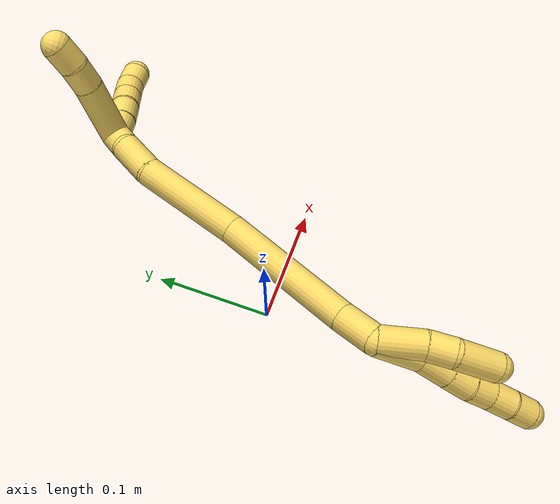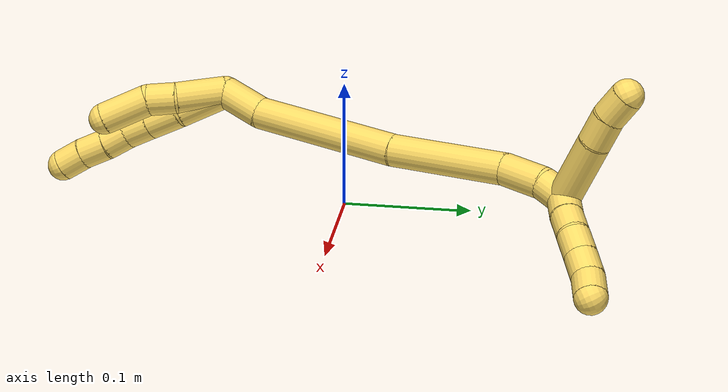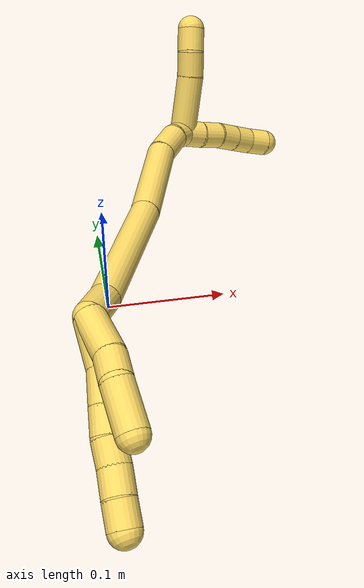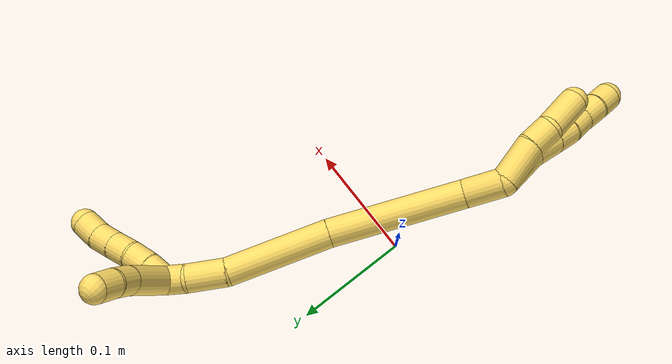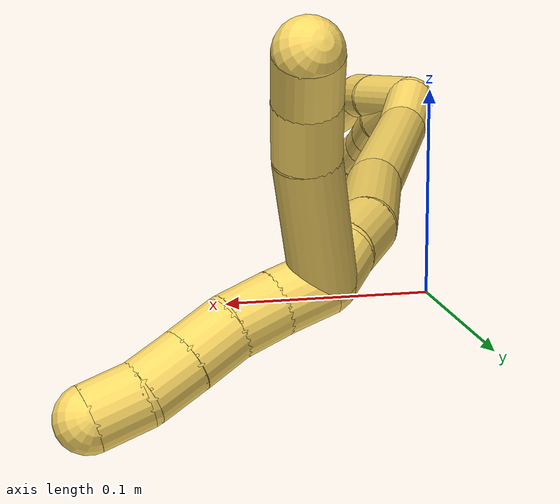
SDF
<sdf version="1.7">
 <world name="default">
  <model name="5">
   <static>0</static>
   <link name="5">
    <collision name="collision-cylinder-e_1_2_8">
     <pose>-0.000658 -0.001163 -0.020147 3.08392 -0.032595 -1.02871</pose>
     <geometry><cylinder><radius>0.0125</radius><length>0.040383</length></cylinder></geometry>
     <surface>
      <friction><ode><mu>1.16</mu><mu2>1.16</mu2><slip1>0</slip1><slip2>0</slip2></ode></friction>
      <contact><ode><kp>1e+06</kp><kd>1</kd><max_vel>0</max_vel><min_depth>0.001</min_depth></ode></contact>
     </surface>
    </collision>
    <visual name="visual-cylinder-e_1_2_8">
     <pose>-0.000658 -0.001163 -0.020147 3.08392 -0.032595 -1.02871</pose>
     <geometry><cylinder><radius>0.0125</radius><length>0.040383</length></cylinder></geometry>
     <material><ambient>1 0.858824 0.4 1</ambient></material>
    </visual>
    <collision name="collision-cylinder-e_2_8_9">
     <pose>-0.003861 -0.00479 -0.053323 2.95468 -0.189629 -1.58529</pose>
     <geometry><cylinder><radius>0.0125</radius><length>0.027003</length></cylinder></geometry>
     <surface>
      <friction><ode><mu>1.16</mu><mu2>1.16</mu2><slip1>0</slip1><slip2>0</slip2></ode></friction>
      <contact><ode><kp>1e+06</kp><kd>1</kd><max_vel>0</max_vel><min_depth>0.001</min_depth></ode></contact>
     </surface>
    </collision>
    <visual name="visual-cylinder-e_2_8_9">
     <pose>-0.003861 -0.00479 -0.053323 2.95468 -0.189629 -1.58529</pose>
     <geometry><cylinder><radius>0.0125</radius><length>0.027003</length></cylinder></geometry>
     <material><ambient>1 0.858824 0.4 1</ambient></material>
    </visual>
    <collision name="collision-cylinder-e_3_9_10">
     <pose>-0.008397 -0.009089 -0.07671 2.96629 -0.187008 -1.63576</pose>
     <geometry><cylinder><radius>0.0125</radius><length>0.021413</length></cylinder></geometry>
     <surface>
      <friction><ode><mu>1.16</mu><mu2>1.16</mu2><slip1>0</slip1><slip2>0</slip2></ode></friction>
      <contact><ode><kp>1e+06</kp><kd>1</kd><max_vel>0</max_vel><min_depth>0.001</min_depth></ode></contact>
     </surface>
    </collision>
    <visual name="visual-cylinder-e_3_9_10">
     <pose>-0.008397 -0.009089 -0.07671 2.96629 -0.187008 -1.63576</pose>
     <geometry><cylinder><radius>0.0125</radius><length>0.021413</length></cylinder></geometry>
     <material><ambient>1 0.858824 0.4 1</ambient></material>
    </visual>
    <collision name="collision-cylinder-e_4_10_11">
     <pose>-0.011669 -0.011162 -0.097008 3.1176 -0.128248 -2.77214</pose>
     <geometry><cylinder><radius>0.0125</radius><length>0.020048</length></cylinder></geometry>
     <surface>
      <friction><ode><mu>1.16</mu><mu2>1.16</mu2><slip1>0</slip1><slip2>0</slip2></ode></friction>
      <contact><ode><kp>1e+06</kp><kd>1</kd><max_vel>0</max_vel><min_depth>0.001</min_depth></ode></contact>
     </surface>
    </collision>
    <visual name="visual-cylinder-e_4_10_11">
     <pose>-0.011669 -0.011162 -0.097008 3.1176 -0.128248 -2.77214</pose>
     <geometry><cylinder><radius>0.0125</radius><length>0.020048</length></cylinder></geometry>
     <material><ambient>1 0.858824 0.4 1</ambient></material>
    </visual>
    <collision name="collision-cylinder-e_5_11_12">
     <pose>-0.01414 -0.012809 -0.117283 3.00621 -0.113441 -1.39441</pose>
     <geometry><cylinder><radius>0.0125</radius><length>0.020998</length></cylinder></geometry>
     <surface>
      <friction><ode><mu>1.16</mu><mu2>1.16</mu2><slip1>0</slip1><slip2>0</slip2></ode></friction>
      <contact><ode><kp>1e+06</kp><kd>1</kd><max_vel>0</max_vel><min_depth>0.001</min_depth></ode></contact>
     </surface>
    </collision>
    <visual name="visual-cylinder-e_5_11_12">
     <pose>-0.01414 -0.012809 -0.117283 3.00621 -0.113441 -1.39441</pose>
     <geometry><cylinder><radius>0.0125</radius><length>0.020998</length></cylinder></geometry>
     <material><ambient>1 0.858824 0.4 1</ambient></material>
    </visual>
    <collision name="collision-cylinder-e_6_12_6">
     <pose>-0.017087 -0.01455 -0.137536 3.10798 -0.175466 -2.76399</pose>
     <geometry><cylinder><radius>0.0125</radius><length>0.020154</length></cylinder></geometry>
     <surface>
      <friction><ode><mu>1.16</mu><mu2>1.16</mu2><slip1>0</slip1><slip2>0</slip2></ode></friction>
      <contact><ode><kp>1e+06</kp><kd>1</kd><max_vel>0</max_vel><min_depth>0.001</min_depth></ode></contact>
     </surface>
    </collision>
    <visual name="visual-cylinder-e_6_12_6">
     <pose>-0.017087 -0.01455 -0.137536 3.10798 -0.175466 -2.76399</pose>
     <geometry><cylinder><radius>0.0125</radius><length>0.020154</length></cylinder></geometry>
     <material><ambient>1 0.858824 0.4 1</ambient></material>
    </visual>
    <collision name="collision-cylinder-e_1_2_13">
     <pose>0.00593 -0.003266 -0.018332 2.96529 0.308317 2.10731</pose>
     <geometry><cylinder><radius>0.0125</radius><length>0.039084</length></cylinder></geometry>
     <surface>
      <friction><ode><mu>1.16</mu><mu2>1.16</mu2><slip1>0</slip1><slip2>0</slip2></ode></friction>
      <contact><ode><kp>1e+06</kp><kd>1</kd><max_vel>0</max_vel><min_depth>0.001</min_depth></ode></contact>
     </surface>
    </collision>
    <visual name="visual-cylinder-e_1_2_13">
     <pose>0.00593 -0.003266 -0.018332 2.96529 0.308317 2.10731</pose>
     <geometry><cylinder><radius>0.0125</radius><length>0.039084</length></cylinder></geometry>
     <material><ambient>1 0.858824 0.4 1</ambient></material>
    </visual>
    <collision name="collision-cylinder-e_2_13_14">
     <pose>0.013872 -0.010118 -0.047273 2.81559 0.177727 0.992993</pose>
     <geometry><cylinder><radius>0.0125</radius><length>0.022756</length></cylinder></geometry>
     <surface>
      <friction><ode><mu>1.16</mu><mu2>1.16</mu2><slip1>0</slip1><slip2>0</slip2></ode></friction>
      <contact><ode><kp>1e+06</kp><kd>1</kd><max_vel>0</max_vel><min_depth>0.001</min_depth></ode></contact>
     </surface>
    </collision>
    <visual name="visual-cylinder-e_2_13_14">
     <pose>0.013872 -0.010118 -0.047273 2.81559 0.177727 0.992993</pose>
     <geometry><cylinder><radius>0.0125</radius><length>0.022756</length></cylinder></geometry>
     <material><ambient>1 0.858824 0.4 1</ambient></material>
    </visual>
    <collision name="collision-cylinder-e_3_14_5">
     <pose>0.01567 -0.014622 -0.076939 3.09351 -0.011211 -0.458012</pose>
     <geometry><cylinder><radius>0.0125</radius><length>0.038159</length></cylinder></geometry>
     <surface>
      <friction><ode><mu>1.16</mu><mu2>1.16</mu2><slip1>0</slip1><slip2>0</slip2></ode></friction>
      <contact><ode><kp>1e+06</kp><kd>1</kd><max_vel>0</max_vel><min_depth>0.001</min_depth></ode></contact>
     </surface>
    </collision>
    <visual name="visual-cylinder-e_3_14_5">
     <pose>0.01567 -0.014622 -0.076939 3.09351 -0.011211 -0.458012</pose>
     <geometry><cylinder><radius>0.0125</radius><length>0.038159</length></cylinder></geometry>
     <material><ambient>1 0.858824 0.4 1</ambient></material>
    </visual>
    <collision name="collision-cylinder-e_1_2_15">
     <pose>-0.002358 0.014331 0.009752 -0.973297 -0.135173 0.071597</pose>
     <geometry><cylinder><radius>0.0125</radius><length>0.034988</length></cylinder></geometry>
     <surface>
      <friction><ode><mu>1.16</mu><mu2>1.16</mu2><slip1>0</slip1><slip2>0</slip2></ode></friction>
      <contact><ode><kp>1e+06</kp><kd>1</kd><max_vel>0</max_vel><min_depth>0.001</min_depth></ode></contact>
     </surface>
    </collision>
    <visual name="visual-cylinder-e_1_2_15">
     <pose>-0.002358 0.014331 0.009752 -0.973297 -0.135173 0.071597</pose>
     <geometry><cylinder><radius>0.0125</radius><length>0.034988</length></cylinder></geometry>
     <material><ambient>1 0.858824 0.4 1</ambient></material>
    </visual>
    <collision name="collision-cylinder-e_2_15_16">
     <pose>-0.002735 0.070214 0.062123 -0.772725 0.033258 -0.013531</pose>
     <geometry><cylinder><radius>0.0125</radius><length>0.119111</length></cylinder></geometry>
     <surface>
      <friction><ode><mu>1.16</mu><mu2>1.16</mu2><slip1>0</slip1><slip2>0</slip2></ode></friction>
      <contact><ode><kp>1e+06</kp><kd>1</kd><max_vel>0</max_vel><min_depth>0.001</min_depth></ode></contact>
     </surface>
    </collision>
    <visual name="visual-cylinder-e_2_15_16">
     <pose>-0.002735 0.070214 0.062123 -0.772725 0.033258 -0.013531</pose>
     <geometry><cylinder><radius>0.0125</radius><length>0.119111</length></cylinder></geometry>
     <material><ambient>1 0.858824 0.4 1</ambient></material>
    </visual>
    <collision name="collision-cylinder-e_3_16_17">
     <pose>0.000175 0.139811 0.140728 -0.662004 0.020359 -0.006996</pose>
     <geometry><cylinder><radius>0.0125</radius><length>0.091266</length></cylinder></geometry>
     <surface>
      <friction><ode><mu>1.16</mu><mu2>1.16</mu2><slip1>0</slip1><slip2>0</slip2></ode></friction>
      <contact><ode><kp>1e+06</kp><kd>1</kd><max_vel>0</max_vel><min_depth>0.001</min_depth></ode></contact>
     </surface>
    </collision>
    <visual name="visual-cylinder-e_3_16_17">
     <pose>0.000175 0.139811 0.140728 -0.662004 0.020359 -0.006996</pose>
     <geometry><cylinder><radius>0.0125</radius><length>0.091266</length></cylinder></geometry>
     <material><ambient>1 0.858824 0.4 1</ambient></material>
    </visual>
    <collision name="collision-cylinder-e_4_17_18">
     <pose>0.003015 0.180979 0.187652 -0.875954 0.11144 -0.052231</pose>
     <geometry><cylinder><radius>0.0125</radius><length>0.034383</length></cylinder></geometry>
     <surface>
      <friction><ode><mu>1.16</mu><mu2>1.16</mu2><slip1>0</slip1><slip2>0</slip2></ode></friction>
      <contact><ode><kp>1e+06</kp><kd>1</kd><max_vel>0</max_vel><min_depth>0.001</min_depth></ode></contact>
     </surface>
    </collision>
    <visual name="visual-cylinder-e_4_17_18">
     <pose>0.003015 0.180979 0.187652 -0.875954 0.11144 -0.052231</pose>
     <geometry><cylinder><radius>0.0125</radius><length>0.034383</length></cylinder></geometry>
     <material><ambient>1 0.858824 0.4 1</ambient></material>
    </visual>
    <collision name="collision-cylinder-e_5_18_1">
     <pose>0.004759 0.2032 0.203036 -1.11633 -0.016631 0.010385</pose>
     <geometry><cylinder><radius>0.0125</radius><length>0.020253</length></cylinder></geometry>
     <surface>
      <friction><ode><mu>1.16</mu><mu2>1.16</mu2><slip1>0</slip1><slip2>0</slip2></ode></friction>
      <contact><ode><kp>1e+06</kp><kd>1</kd><max_vel>0</max_vel><min_depth>0.001</min_depth></ode></contact>
     </surface>
    </collision>
    <visual name="visual-cylinder-e_5_18_1">
     <pose>0.004759 0.2032 0.203036 -1.11633 -0.016631 0.010385</pose>
     <geometry><cylinder><radius>0.0125</radius><length>0.020253</length></cylinder></geometry>
     <material><ambient>1 0.858824 0.4 1</ambient></material>
    </visual>
    <collision name="collision-cylinder-e_1_1_19">
     <pose>0.024228 0.20713 0.226185 0.269552 0.791331 0.113156</pose>
     <geometry><cylinder><radius>0.0125</radius><length>0.055216</length></cylinder></geometry>
     <surface>
      <friction><ode><mu>1.16</mu><mu2>1.16</mu2><slip1>0</slip1><slip2>0</slip2></ode></friction>
      <contact><ode><kp>1e+06</kp><kd>1</kd><max_vel>0</max_vel><min_depth>0.001</min_depth></ode></contact>
     </surface>
    </collision>
    <visual name="visual-cylinder-e_1_1_19">
     <pose>0.024228 0.20713 0.226185 0.269552 0.791331 0.113156</pose>
     <geometry><cylinder><radius>0.0125</radius><length>0.055216</length></cylinder></geometry>
     <material><ambient>1 0.858824 0.4 1</ambient></material>
    </visual>
    <collision name="collision-cylinder-e_2_19_20">
     <pose>0.051266 0.198919 0.253253 0.348953 0.693731 0.127263</pose>
     <geometry><cylinder><radius>0.0125</radius><length>0.023151</length></cylinder></geometry>
     <surface>
      <friction><ode><mu>1.16</mu><mu2>1.16</mu2><slip1>0</slip1><slip2>0</slip2></ode></friction>
      <contact><ode><kp>1e+06</kp><kd>1</kd><max_vel>0</max_vel><min_depth>0.001</min_depth></ode></contact>
     </surface>
    </collision>
    <visual name="visual-cylinder-e_2_19_20">
     <pose>0.051266 0.198919 0.253253 0.348953 0.693731 0.127263</pose>
     <geometry><cylinder><radius>0.0125</radius><length>0.023151</length></cylinder></geometry>
     <material><ambient>1 0.858824 0.4 1</ambient></material>
    </visual>
    <collision name="collision-cylinder-e_3_20_4">
     <pose>0.064601 0.194531 0.27056 0.149251 0.580619 0.044664</pose>
     <geometry><cylinder><radius>0.0125</radius><length>0.021634</length></cylinder></geometry>
     <surface>
      <friction><ode><mu>1.16</mu><mu2>1.16</mu2><slip1>0</slip1><slip2>0</slip2></ode></friction>
      <contact><ode><kp>1e+06</kp><kd>1</kd><max_vel>0</max_vel><min_depth>0.001</min_depth></ode></contact>
     </surface>
    </collision>
    <visual name="visual-cylinder-e_3_20_4">
     <pose>0.064601 0.194531 0.27056 0.149251 0.580619 0.044664</pose>
     <geometry><cylinder><radius>0.0125</radius><length>0.021634</length></cylinder></geometry>
     <material><ambient>1 0.858824 0.4 1</ambient></material>
    </visual>
    <collision name="collision-cylinder-e_1_1_21">
     <pose>0.008247 0.221485 0.205992 -1.73143 0.374336 -0.437944</pose>
     <geometry><cylinder><radius>0.0125</radius><length>0.02</length></cylinder></geometry>
     <surface>
      <friction><ode><mu>1.16</mu><mu2>1.16</mu2><slip1>0</slip1><slip2>0</slip2></ode></friction>
      <contact><ode><kp>1e+06</kp><kd>1</kd><max_vel>0</max_vel><min_depth>0.001</min_depth></ode></contact>
     </surface>
    </collision>
    <visual name="visual-cylinder-e_1_1_21">
     <pose>0.008247 0.221485 0.205992 -1.73143 0.374336 -0.437944</pose>
     <geometry><cylinder><radius>0.0125</radius><length>0.02</length></cylinder></geometry>
     <material><ambient>1 0.858824 0.4 1</ambient></material>
    </visual>
    <collision name="collision-cylinder-e_2_21_22">
     <pose>0.015097 0.240136 0.203995 -1.62437 0.324995 -0.34255</pose>
     <geometry><cylinder><radius>0.0125</radius><length>0.02</length></cylinder></geometry>
     <surface>
      <friction><ode><mu>1.16</mu><mu2>1.16</mu2><slip1>0</slip1><slip2>0</slip2></ode></friction>
      <contact><ode><kp>1e+06</kp><kd>1</kd><max_vel>0</max_vel><min_depth>0.001</min_depth></ode></contact>
     </surface>
    </collision>
    <visual name="visual-cylinder-e_2_21_22">
     <pose>0.015097 0.240136 0.203995 -1.62437 0.324995 -0.34255</pose>
     <geometry><cylinder><radius>0.0125</radius><length>0.02</length></cylinder></geometry>
     <material><ambient>1 0.858824 0.4 1</ambient></material>
    </visual>
    <collision name="collision-cylinder-e_3_22_23">
     <pose>0.01986 0.259455 0.202862 -1.63422 0.157709 -0.167995</pose>
     <geometry><cylinder><radius>0.0125</radius><length>0.02</length></cylinder></geometry>
     <surface>
      <friction><ode><mu>1.16</mu><mu2>1.16</mu2><slip1>0</slip1><slip2>0</slip2></ode></friction>
      <contact><ode><kp>1e+06</kp><kd>1</kd><max_vel>0</max_vel><min_depth>0.001</min_depth></ode></contact>
     </surface>
    </collision>
    <visual name="visual-cylinder-e_3_22_23">
     <pose>0.01986 0.259455 0.202862 -1.63422 0.157709 -0.167995</pose>
     <geometry><cylinder><radius>0.0125</radius><length>0.02</length></cylinder></geometry>
     <material><ambient>1 0.858824 0.4 1</ambient></material>
    </visual>
    <collision name="collision-cylinder-e_4_23_24">
     <pose>0.023186 0.279129 0.201512 -1.64437 0.176449 -0.189855</pose>
     <geometry><cylinder><radius>0.0125</radius><length>0.02</length></cylinder></geometry>
     <surface>
      <friction><ode><mu>1.16</mu><mu2>1.16</mu2><slip1>0</slip1><slip2>0</slip2></ode></friction>
      <contact><ode><kp>1e+06</kp><kd>1</kd><max_vel>0</max_vel><min_depth>0.001</min_depth></ode></contact>
     </surface>
    </collision>
    <visual name="visual-cylinder-e_4_23_24">
     <pose>0.023186 0.279129 0.201512 -1.64437 0.176449 -0.189855</pose>
     <geometry><cylinder><radius>0.0125</radius><length>0.02</length></cylinder></geometry>
     <material><ambient>1 0.858824 0.4 1</ambient></material>
    </visual>
    <collision name="collision-cylinder-e_5_24_3">
     <pose>0.028552 0.298078 0.198892 -1.7756 0.369378 -0.451398</pose>
     <geometry><cylinder><radius>0.0125</radius><length>0.02</length></cylinder></geometry>
     <surface>
      <friction><ode><mu>1.16</mu><mu2>1.16</mu2><slip1>0</slip1><slip2>0</slip2></ode></friction>
      <contact><ode><kp>1e+06</kp><kd>1</kd><max_vel>0</max_vel><min_depth>0.001</min_depth></ode></contact>
     </surface>
    </collision>
    <visual name="visual-cylinder-e_5_24_3">
     <pose>0.028552 0.298078 0.198892 -1.7756 0.369378 -0.451398</pose>
     <geometry><cylinder><radius>0.0125</radius><length>0.02</length></cylinder></geometry>
     <material><ambient>1 0.858824 0.4 1</ambient></material>
    </visual>
    <collision name="collision-sphere-3">
     <pose>0.032162 0.307208 0.196996 0 -0 0</pose>
     <geometry><sphere><radius>0.0125</radius></sphere></geometry>
     <surface>
      <friction><ode><mu>1.16</mu><mu2>1.16</mu2><slip1>0</slip1><slip2>0</slip2></ode></friction>
      <contact><ode><kp>1e+06</kp><kd>1</kd><max_vel>0</max_vel><min_depth>0.001</min_depth></ode></contact>
     </surface>
    </collision>
    <visual name="visual-sphere-3">
     <pose>0.032162 0.307208 0.196996 0 -0 0</pose>
     <geometry><sphere><radius>0.0125</radius></sphere></geometry>
     <material><ambient>1 0.858824 0.4 1</ambient></material>
    </visual>
    <collision name="collision-sphere-24">
     <pose>0.024941 0.288947 0.200789 0 -0 0</pose>
     <geometry><sphere><radius>0.0125</radius></sphere></geometry>
     <surface>
      <friction><ode><mu>1.16</mu><mu2>1.16</mu2><slip1>0</slip1><slip2>0</slip2></ode></friction>
      <contact><ode><kp>1e+06</kp><kd>1</kd><max_vel>0</max_vel><min_depth>0.001</min_depth></ode></contact>
     </surface>
    </collision>
    <visual name="visual-sphere-24">
     <pose>0.024941 0.288947 0.200789 0 -0 0</pose>
     <geometry><sphere><radius>0.0125</radius></sphere></geometry>
     <material><ambient>1 0.858824 0.4 1</ambient></material>
    </visual>
    <collision name="collision-sphere-23">
     <pose>0.021431 0.269311 0.202236 0 -0 0</pose>
     <geometry><sphere><radius>0.0125</radius></sphere></geometry>
     <surface>
      <friction><ode><mu>1.16</mu><mu2>1.16</mu2><slip1>0</slip1><slip2>0</slip2></ode></friction>
      <contact><ode><kp>1e+06</kp><kd>1</kd><max_vel>0</max_vel><min_depth>0.001</min_depth></ode></contact>
     </surface>
    </collision>
    <visual name="visual-sphere-23">
     <pose>0.021431 0.269311 0.202236 0 -0 0</pose>
     <geometry><sphere><radius>0.0125</radius></sphere></geometry>
     <material><ambient>1 0.858824 0.4 1</ambient></material>
    </visual>
    <collision name="collision-sphere-22">
     <pose>0.01829 0.249599 0.203488 0 -0 0</pose>
     <geometry><sphere><radius>0.0125</radius></sphere></geometry>
     <surface>
      <friction><ode><mu>1.16</mu><mu2>1.16</mu2><slip1>0</slip1><slip2>0</slip2></ode></friction>
      <contact><ode><kp>1e+06</kp><kd>1</kd><max_vel>0</max_vel><min_depth>0.001</min_depth></ode></contact>
     </surface>
    </collision>
    <visual name="visual-sphere-22">
     <pose>0.01829 0.249599 0.203488 0 -0 0</pose>
     <geometry><sphere><radius>0.0125</radius></sphere></geometry>
     <material><ambient>1 0.858824 0.4 1</ambient></material>
    </visual>
    <collision name="collision-sphere-21">
     <pose>0.011903 0.230673 0.204503 0 -0 0</pose>
     <geometry><sphere><radius>0.0125</radius></sphere></geometry>
     <surface>
      <friction><ode><mu>1.16</mu><mu2>1.16</mu2><slip1>0</slip1><slip2>0</slip2></ode></friction>
      <contact><ode><kp>1e+06</kp><kd>1</kd><max_vel>0</max_vel><min_depth>0.001</min_depth></ode></contact>
     </surface>
    </collision>
    <visual name="visual-sphere-21">
     <pose>0.011903 0.230673 0.204503 0 -0 0</pose>
     <geometry><sphere><radius>0.0125</radius></sphere></geometry>
     <material><ambient>1 0.858824 0.4 1</ambient></material>
    </visual>
    <collision name="collision-sphere-4">
     <pose>0.070534 0.193186 0.279504 0 -0 0</pose>
     <geometry><sphere><radius>0.0125</radius></sphere></geometry>
     <surface>
      <friction><ode><mu>1.16</mu><mu2>1.16</mu2><slip1>0</slip1><slip2>0</slip2></ode></friction>
      <contact><ode><kp>1e+06</kp><kd>1</kd><max_vel>0</max_vel><min_depth>0.001</min_depth></ode></contact>
     </surface>
    </collision>
    <visual name="visual-sphere-4">
     <pose>0.070534 0.193186 0.279504 0 -0 0</pose>
     <geometry><sphere><radius>0.0125</radius></sphere></geometry>
     <material><ambient>1 0.858824 0.4 1</ambient></material>
    </visual>
    <collision name="collision-sphere-20">
     <pose>0.058667 0.195876 0.261617 0 -0 0</pose>
     <geometry><sphere><radius>0.0125</radius></sphere></geometry>
     <surface>
      <friction><ode><mu>1.16</mu><mu2>1.16</mu2><slip1>0</slip1><slip2>0</slip2></ode></friction>
      <contact><ode><kp>1e+06</kp><kd>1</kd><max_vel>0</max_vel><min_depth>0.001</min_depth></ode></contact>
     </surface>
    </collision>
    <visual name="visual-sphere-20">
     <pose>0.058667 0.195876 0.261617 0 -0 0</pose>
     <geometry><sphere><radius>0.0125</radius></sphere></geometry>
     <material><ambient>1 0.858824 0.4 1</ambient></material>
    </visual>
    <collision name="collision-sphere-12">
     <pose>-0.015328 -0.014217 -0.127619 0 -0 0</pose>
     <geometry><sphere><radius>0.0125</radius></sphere></geometry>
     <surface>
      <friction><ode><mu>1.16</mu><mu2>1.16</mu2><slip1>0</slip1><slip2>0</slip2></ode></friction>
      <contact><ode><kp>1e+06</kp><kd>1</kd><max_vel>0</max_vel><min_depth>0.001</min_depth></ode></contact>
     </surface>
    </collision>
    <visual name="visual-sphere-12">
     <pose>-0.015328 -0.014217 -0.127619 0 -0 0</pose>
     <geometry><sphere><radius>0.0125</radius></sphere></geometry>
     <material><ambient>1 0.858824 0.4 1</ambient></material>
    </visual>
    <collision name="collision-sphere-11">
     <pose>-0.012951 -0.011401 -0.106947 0 -0 0</pose>
     <geometry><sphere><radius>0.0125</radius></sphere></geometry>
     <surface>
      <friction><ode><mu>1.16</mu><mu2>1.16</mu2><slip1>0</slip1><slip2>0</slip2></ode></friction>
      <contact><ode><kp>1e+06</kp><kd>1</kd><max_vel>0</max_vel><min_depth>0.001</min_depth></ode></contact>
     </surface>
    </collision>
    <visual name="visual-sphere-11">
     <pose>-0.012951 -0.011401 -0.106947 0 -0 0</pose>
     <geometry><sphere><radius>0.0125</radius></sphere></geometry>
     <material><ambient>1 0.858824 0.4 1</ambient></material>
    </visual>
    <collision name="collision-sphere-10">
     <pose>-0.010387 -0.010924 -0.087069 0 -0 0</pose>
     <geometry><sphere><radius>0.0125</radius></sphere></geometry>
     <surface>
      <friction><ode><mu>1.16</mu><mu2>1.16</mu2><slip1>0</slip1><slip2>0</slip2></ode></friction>
      <contact><ode><kp>1e+06</kp><kd>1</kd><max_vel>0</max_vel><min_depth>0.001</min_depth></ode></contact>
     </surface>
    </collision>
    <visual name="visual-sphere-10">
     <pose>-0.010387 -0.010924 -0.087069 0 -0 0</pose>
     <geometry><sphere><radius>0.0125</radius></sphere></geometry>
     <material><ambient>1 0.858824 0.4 1</ambient></material>
    </visual>
    <collision name="collision-sphere-9">
     <pose>-0.006406 -0.007254 -0.066352 0 -0 0</pose>
     <geometry><sphere><radius>0.0125</radius></sphere></geometry>
     <surface>
      <friction><ode><mu>1.16</mu><mu2>1.16</mu2><slip1>0</slip1><slip2>0</slip2></ode></friction>
      <contact><ode><kp>1e+06</kp><kd>1</kd><max_vel>0</max_vel><min_depth>0.001</min_depth></ode></contact>
     </surface>
    </collision>
    <visual name="visual-sphere-9">
     <pose>-0.006406 -0.007254 -0.066352 0 -0 0</pose>
     <geometry><sphere><radius>0.0125</radius></sphere></geometry>
     <material><ambient>1 0.858824 0.4 1</ambient></material>
    </visual>
    <collision name="collision-sphere-2">
     <geometry><sphere><radius>0.0125</radius></sphere></geometry>
     <surface>
      <friction><ode><mu>1.16</mu><mu2>1.16</mu2><slip1>0</slip1><slip2>0</slip2></ode></friction>
      <contact><ode><kp>1e+06</kp><kd>1</kd><max_vel>0</max_vel><min_depth>0.001</min_depth></ode></contact>
     </surface>
    </collision>
    <visual name="visual-sphere-2">
     <geometry><sphere><radius>0.0125</radius></sphere></geometry>
     <material><ambient>1 0.858824 0.4 1</ambient></material>
    </visual>
    <collision name="collision-sphere-19">
     <pose>0.043865 0.201962 0.24489 0 -0 0</pose>
     <geometry><sphere><radius>0.0125</radius></sphere></geometry>
     <surface>
      <friction><ode><mu>1.16</mu><mu2>1.16</mu2><slip1>0</slip1><slip2>0</slip2></ode></friction>
      <contact><ode><kp>1e+06</kp><kd>1</kd><max_vel>0</max_vel><min_depth>0.001</min_depth></ode></contact>
     </surface>
    </collision>
    <visual name="visual-sphere-19">
     <pose>0.043865 0.201962 0.24489 0 -0 0</pose>
     <geometry><sphere><radius>0.0125</radius></sphere></geometry>
     <material><ambient>1 0.858824 0.4 1</ambient></material>
    </visual>
    <collision name="collision-sphere-8">
     <pose>-0.001316 -0.002326 -0.040294 0 -0 0</pose>
     <geometry><sphere><radius>0.0125</radius></sphere></geometry>
     <surface>
      <friction><ode><mu>1.16</mu><mu2>1.16</mu2><slip1>0</slip1><slip2>0</slip2></ode></friction>
      <contact><ode><kp>1e+06</kp><kd>1</kd><max_vel>0</max_vel><min_depth>0.001</min_depth></ode></contact>
     </surface>
    </collision>
    <visual name="visual-sphere-8">
     <pose>-0.001316 -0.002326 -0.040294 0 -0 0</pose>
     <geometry><sphere><radius>0.0125</radius></sphere></geometry>
     <material><ambient>1 0.858824 0.4 1</ambient></material>
    </visual>
    <collision name="collision-sphere-6">
     <pose>-0.018846 -0.014884 -0.147453 0 -0 0</pose>
     <geometry><sphere><radius>0.0125</radius></sphere></geometry>
     <surface>
      <friction><ode><mu>1.16</mu><mu2>1.16</mu2><slip1>0</slip1><slip2>0</slip2></ode></friction>
      <contact><ode><kp>1e+06</kp><kd>1</kd><max_vel>0</max_vel><min_depth>0.001</min_depth></ode></contact>
     </surface>
    </collision>
    <visual name="visual-sphere-6">
     <pose>-0.018846 -0.014884 -0.147453 0 -0 0</pose>
     <geometry><sphere><radius>0.0125</radius></sphere></geometry>
     <material><ambient>1 0.858824 0.4 1</ambient></material>
    </visual>
    <collision name="collision-sphere-13">
     <pose>0.01186 -0.006532 -0.036664 0 -0 0</pose>
     <geometry><sphere><radius>0.0125</radius></sphere></geometry>
     <surface>
      <friction><ode><mu>1.16</mu><mu2>1.16</mu2><slip1>0</slip1><slip2>0</slip2></ode></friction>
      <contact><ode><kp>1e+06</kp><kd>1</kd><max_vel>0</max_vel><min_depth>0.001</min_depth></ode></contact>
     </surface>
    </collision>
    <visual name="visual-sphere-13">
     <pose>0.01186 -0.006532 -0.036664 0 -0 0</pose>
     <geometry><sphere><radius>0.0125</radius></sphere></geometry>
     <material><ambient>1 0.858824 0.4 1</ambient></material>
    </visual>
    <collision name="collision-sphere-14">
     <pose>0.015883 -0.013705 -0.057882 0 -0 0</pose>
     <geometry><sphere><radius>0.0125</radius></sphere></geometry>
     <surface>
      <friction><ode><mu>1.16</mu><mu2>1.16</mu2><slip1>0</slip1><slip2>0</slip2></ode></friction>
      <contact><ode><kp>1e+06</kp><kd>1</kd><max_vel>0</max_vel><min_depth>0.001</min_depth></ode></contact>
     </surface>
    </collision>
    <visual name="visual-sphere-14">
     <pose>0.015883 -0.013705 -0.057882 0 -0 0</pose>
     <geometry><sphere><radius>0.0125</radius></sphere></geometry>
     <material><ambient>1 0.858824 0.4 1</ambient></material>
    </visual>
    <collision name="collision-sphere-5">
     <pose>0.015456 -0.015539 -0.095995 0 -0 0</pose>
     <geometry><sphere><radius>0.0125</radius></sphere></geometry>
     <surface>
      <friction><ode><mu>1.16</mu><mu2>1.16</mu2><slip1>0</slip1><slip2>0</slip2></ode></friction>
      <contact><ode><kp>1e+06</kp><kd>1</kd><max_vel>0</max_vel><min_depth>0.001</min_depth></ode></contact>
     </surface>
    </collision>
    <visual name="visual-sphere-5">
     <pose>0.015456 -0.015539 -0.095995 0 -0 0</pose>
     <geometry><sphere><radius>0.0125</radius></sphere></geometry>
     <material><ambient>1 0.858824 0.4 1</ambient></material>
    </visual>
    <collision name="collision-sphere-15">
     <pose>-0.004715 0.028662 0.019504 0 -0 0</pose>
     <geometry><sphere><radius>0.0125</radius></sphere></geometry>
     <surface>
      <friction><ode><mu>1.16</mu><mu2>1.16</mu2><slip1>0</slip1><slip2>0</slip2></ode></friction>
      <contact><ode><kp>1e+06</kp><kd>1</kd><max_vel>0</max_vel><min_depth>0.001</min_depth></ode></contact>
     </surface>
    </collision>
    <visual name="visual-sphere-15">
     <pose>-0.004715 0.028662 0.019504 0 -0 0</pose>
     <geometry><sphere><radius>0.0125</radius></sphere></geometry>
     <material><ambient>1 0.858824 0.4 1</ambient></material>
    </visual>
    <collision name="collision-sphere-16">
     <pose>-0.000754 0.111767 0.104742 0 -0 0</pose>
     <geometry><sphere><radius>0.0125</radius></sphere></geometry>
     <surface>
      <friction><ode><mu>1.16</mu><mu2>1.16</mu2><slip1>0</slip1><slip2>0</slip2></ode></friction>
      <contact><ode><kp>1e+06</kp><kd>1</kd><max_vel>0</max_vel><min_depth>0.001</min_depth></ode></contact>
     </surface>
    </collision>
    <visual name="visual-sphere-16">
     <pose>-0.000754 0.111767 0.104742 0 -0 0</pose>
     <geometry><sphere><radius>0.0125</radius></sphere></geometry>
     <material><ambient>1 0.858824 0.4 1</ambient></material>
    </visual>
    <collision name="collision-sphere-17">
     <pose>0.001104 0.167856 0.176714 0 -0 0</pose>
     <geometry><sphere><radius>0.0125</radius></sphere></geometry>
     <surface>
      <friction><ode><mu>1.16</mu><mu2>1.16</mu2><slip1>0</slip1><slip2>0</slip2></ode></friction>
      <contact><ode><kp>1e+06</kp><kd>1</kd><max_vel>0</max_vel><min_depth>0.001</min_depth></ode></contact>
     </surface>
    </collision>
    <visual name="visual-sphere-17">
     <pose>0.001104 0.167856 0.176714 0 -0 0</pose>
     <geometry><sphere><radius>0.0125</radius></sphere></geometry>
     <material><ambient>1 0.858824 0.4 1</ambient></material>
    </visual>
    <collision name="collision-sphere-18">
     <pose>0.004927 0.194103 0.198591 0 -0 0</pose>
     <geometry><sphere><radius>0.0125</radius></sphere></geometry>
     <surface>
      <friction><ode><mu>1.16</mu><mu2>1.16</mu2><slip1>0</slip1><slip2>0</slip2></ode></friction>
      <contact><ode><kp>1e+06</kp><kd>1</kd><max_vel>0</max_vel><min_depth>0.001</min_depth></ode></contact>
     </surface>
    </collision>
    <visual name="visual-sphere-18">
     <pose>0.004927 0.194103 0.198591 0 -0 0</pose>
     <geometry><sphere><radius>0.0125</radius></sphere></geometry>
     <material><ambient>1 0.858824 0.4 1</ambient></material>
    </visual>
    <collision name="collision-sphere-1">
     <pose>0.00459 0.212297 0.20748 0 -0 0</pose>
     <geometry><sphere><radius>0.0125</radius></sphere></geometry>
     <surface>
      <friction><ode><mu>1.16</mu><mu2>1.16</mu2><slip1>0</slip1><slip2>0</slip2></ode></friction>
      <contact><ode><kp>1e+06</kp><kd>1</kd><max_vel>0</max_vel><min_depth>0.001</min_depth></ode></contact>
     </surface>
    </collision>
    <visual name="visual-sphere-1">
     <pose>0.00459 0.212297 0.20748 0 -0 0</pose>
     <geometry><sphere><radius>0.0125</radius></sphere></geometry>
     <material><ambient>1 0.858824 0.4 1</ambient></material>
    </visual>
    <inertial>
     <pose>0.007451 0.101474 0.079753 0 -0 0</pose>
     <mass>0.75</mass>
     <inertia>
      <ixx>0.000244</ixx>
      <ixy>0</ixy>
      <ixz>0</ixz>
      <iyy>0.000188</iyy>
      <iyz>0</iyz>
      <izz>-0.000172</izz>
     </inertia>
    </inertial>
   </link>
   <pose>-0.019227 -0.097304 0.080989 -0.912458 -0.805636 -0.281274</pose>
  </model>
 </world>
</sdf>
